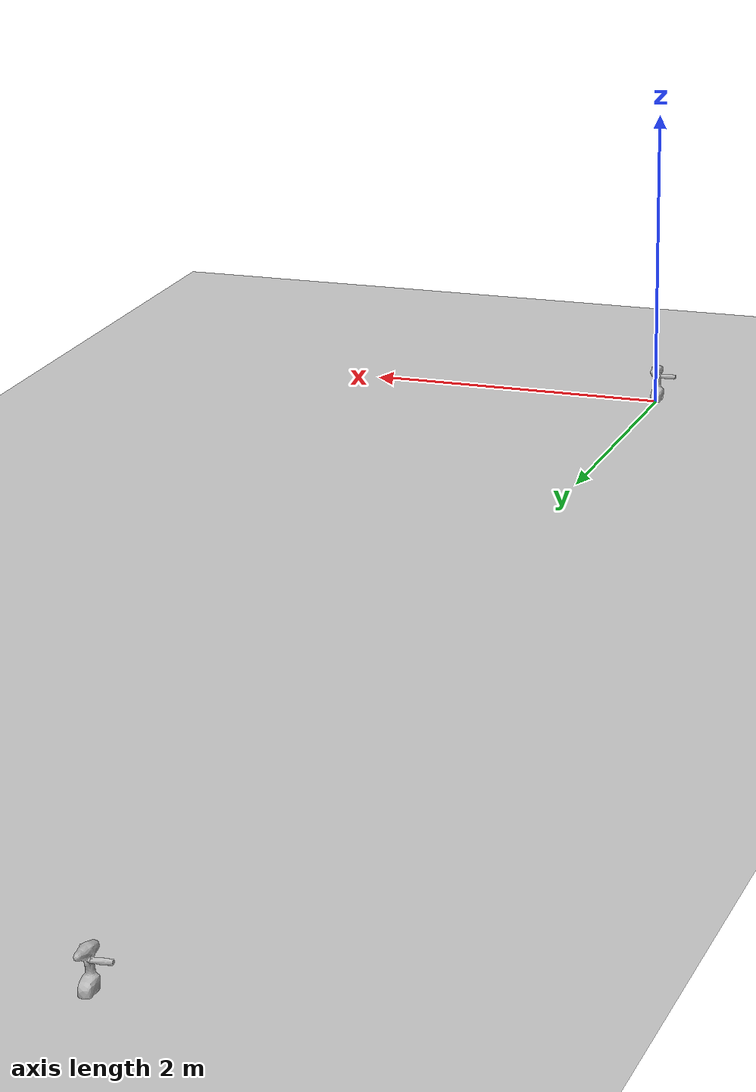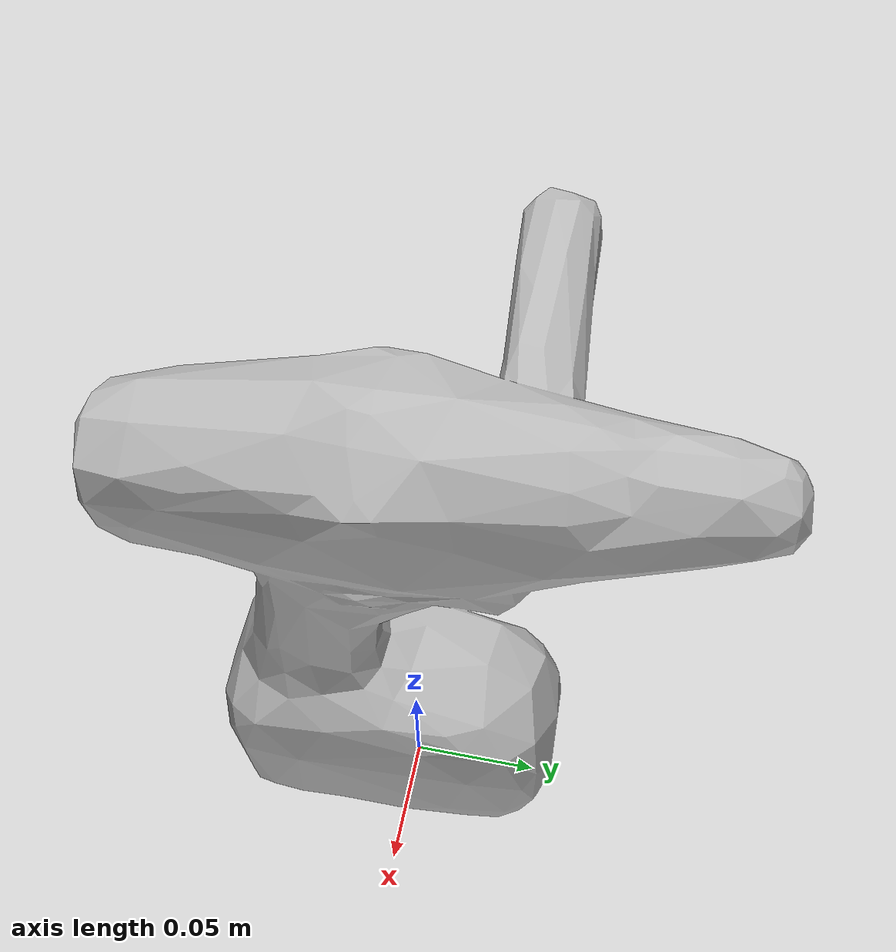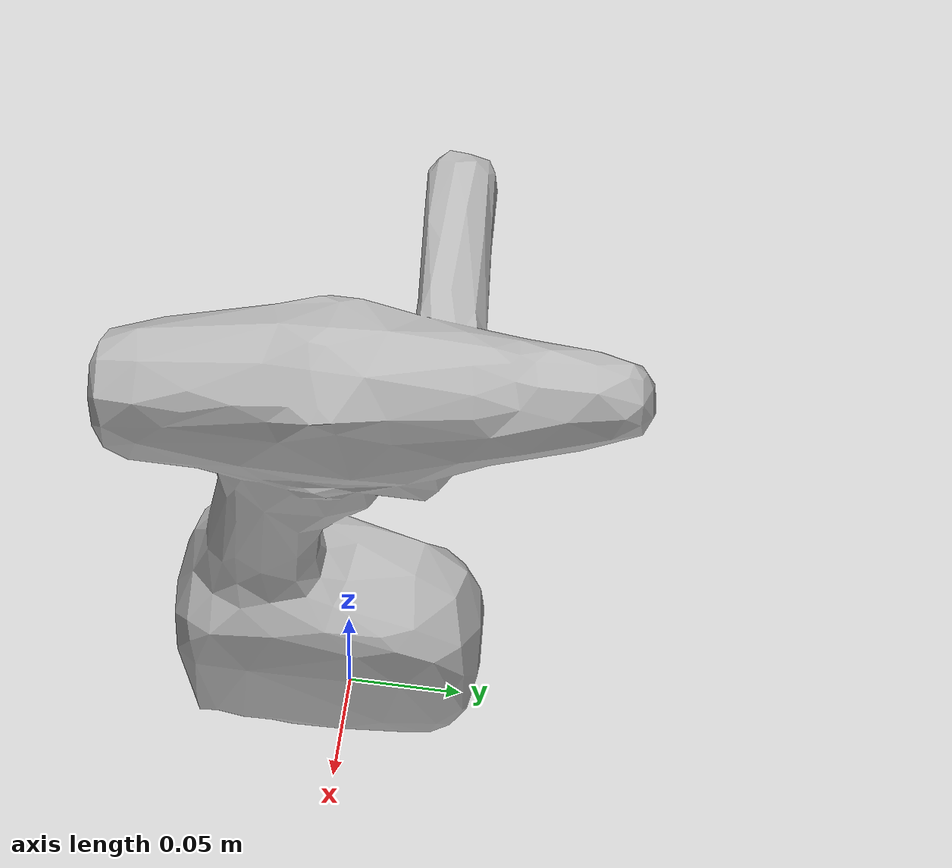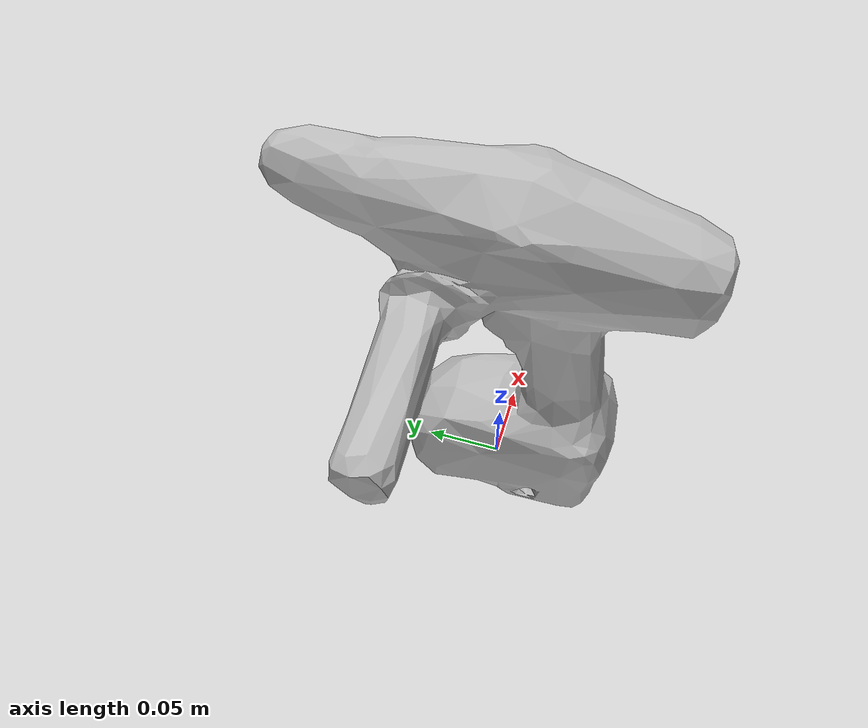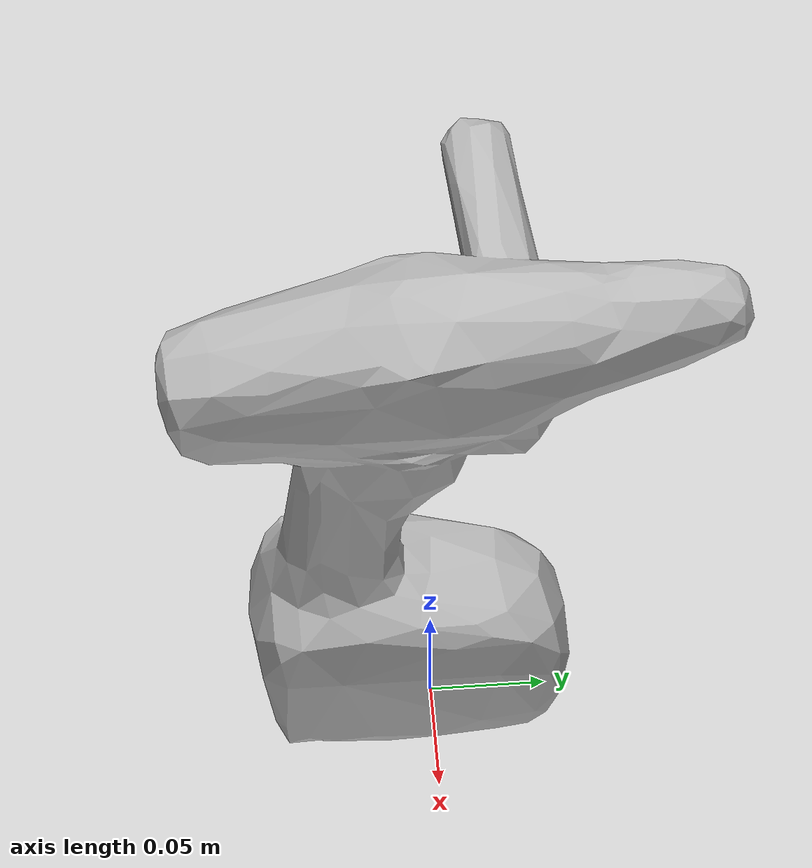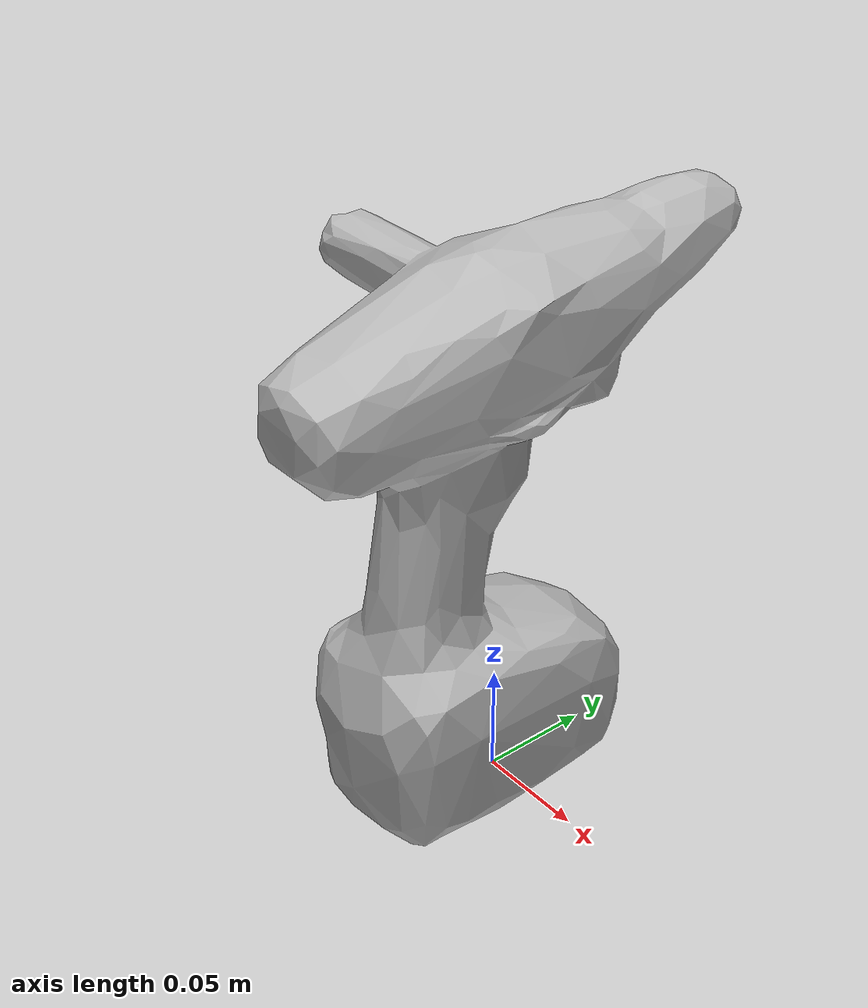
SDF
<?xml version="1.0" ?>
<sdf version="1.5">
  <world name="default">
    <!-- A global light source -->
    <include>
      <uri>model://sun</uri>
    </include>
    <!-- A ground plane -->
    <include>
      <uri>model://ground_plane</uri>
    </include>

    <model name="drill_01">
      <link name="link">
        <collision name="collision">
          <pose>0 0 -0.09 0 0 0</pose>
          <geometry>
            <mesh>
              <uri>model://cordless_drill/meshes/cordless_drill.stl</uri>
            </mesh>
          </geometry>
        </collision>
        <visual name="visual">
          <pose>0 0 -0.09 0 0 0</pose>
          <geometry>
            <mesh>
              <uri>model://cordless_drill/meshes/cordless_drill.dae</uri>
            </mesh>
          </geometry>
        </visual>
      </link>
    </model>

    <model name="drill_02">
      <pose>0 10 0.0 0 0 0</pose>
      <link name="link">
        <collision name="collision">
          <pose>0 0 -0.09 0 0 0</pose>
          <geometry>
            <mesh>
              <uri>model://cordless_drill/meshes/cordless_drill.stl</uri>
            </mesh>
          </geometry>
        </collision>
        <visual name="visual">
          <pose>0 0 -0.09 0 0 0</pose>
          <geometry>
            <mesh>
              <uri>model://cordless_drill/meshes/cordless_drill.dae</uri>
            </mesh>
          </geometry>
          <cast_shadows>false</cast_shadows>
        </visual>
      </link>
    </model>

  </world>
</sdf>
